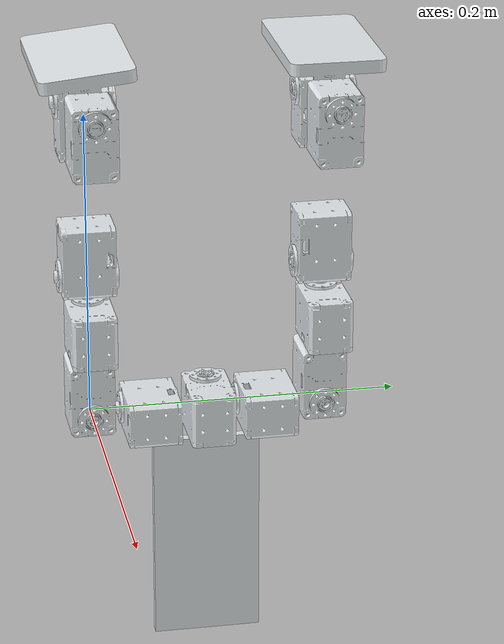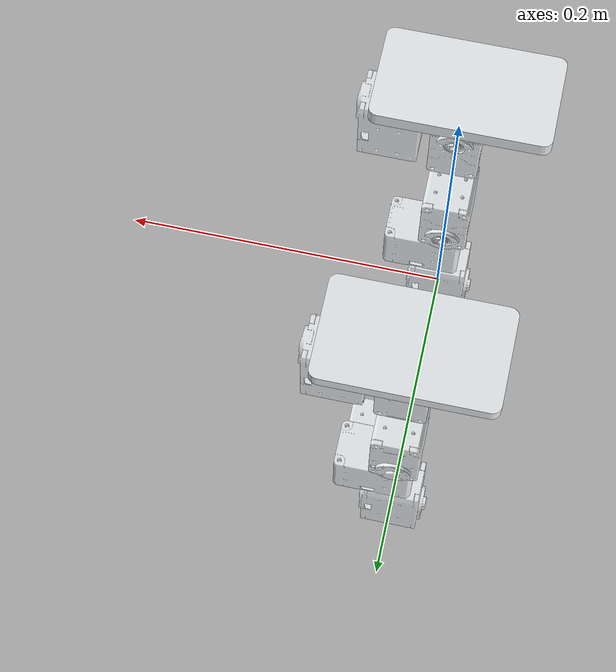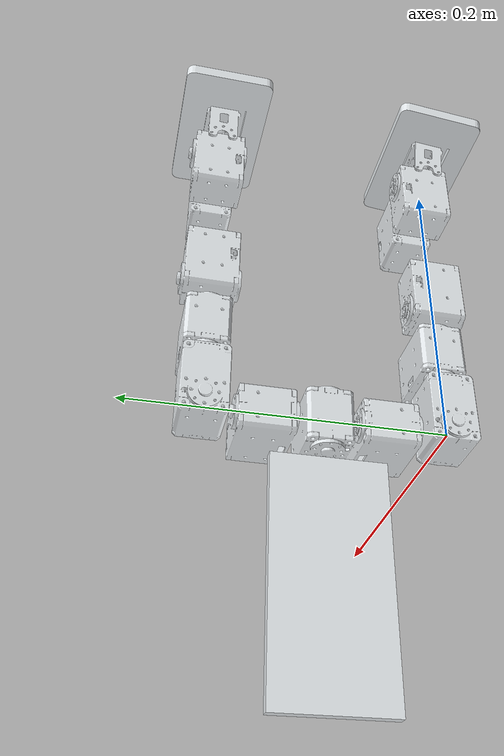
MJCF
<mujoco model="3">
  <default>
    <default class="robot">
      <default class="motor">
        <joint />
        <motor />
        </default>
      <default class="visual">
        <geom material="visualgeom" contype="0" conaffinity="0" group="2" />
        </default>
      <default class="collision">
        <geom material="collision_material" condim="3" contype="0" conaffinity="1" priority="1" group="1" solref="0.005 1" solimp="0.99 0.999 1e-05" friction="1 0.01 0.01" />
        </default>
      </default>
    </default>
  <compiler angle="radian" meshdir="meshes/" />
  <asset>
    <material name="visualgeom" rgba="1 0.949019607843137 0.898039215686275 1" />
    <material name="default_material" rgba="0.7 0.7 0.7 1" />
    <material name="collision_material" rgba="0.89804 0.91765 0.92941 1.0" />
    <mesh name="base_link.STL" file="base_link.STL" />
    <mesh name="r_hip_pitch_link.STL" file="r_hip_pitch_link.STL" />
    <mesh name="r_hip_roll_link.STL" file="r_hip_roll_link.STL" />
    <mesh name="r_hip_thigh_link.STL" file="r_hip_thigh_link.STL" />
    <mesh name="r_hip_calf_link.STL" file="r_hip_calf_link.STL" />
    <mesh name="r_ankle_pitch_link.STL" file="r_ankle_pitch_link.STL" />
    <mesh name="r_ankle_roll_link.STL" file="r_ankle_roll_link.STL" />
    <mesh name="l_hip_pitch_link.STL" file="l_hip_pitch_link.STL" />
    <mesh name="l_hip_roll_link.STL" file="l_hip_roll_link.STL" />
    <mesh name="l_hip_thigh_link.STL" file="l_hip_thigh_link.STL" />
    <mesh name="l_hip_calf_link.STL" file="l_hip_calf_link.STL" />
    <mesh name="l_ankle_pitch_link.STL" file="l_ankle_pitch_link.STL" />
    <mesh name="l_ankle_roll_link.STL" file="l_ankle_roll_link.STL" />
    <mesh name="waist_yaw_link.STL" file="waist_yaw_link.STL" />
    </asset>
  <worldbody>
    <body name="base_link" pos="0.00000000 0.00000000 0.20900000" quat="1 0 0 0" childclass="robot">
      <freejoint name="floating_base" />
      <geom name="base_link_collision" pos="0 0 0" quat="1.0 0.0 0.0 0.0" type="mesh" mesh="base_link.STL" class="collision" />
      <geom name="base_link_visual" pos="0 0 0" quat="1.0 0.0 0.0 0.0" material="visualgeom" type="mesh" mesh="base_link.STL" class="visual" />
      <body name="r_hip_pitch_link" pos="0 0.03775 -0.209" quat="2.609984271978568e-30 -1.6155445744325867e-15 1.0 -1.6155445744325867e-15">
        <joint name="r_hip_pitch_joint" type="hinge" ref="0.0" class="motor" range="-3.142 3.142" axis="0 1 0" />
        <site name="r_hip_pitch_joint_site" pos="0 0 0" quat="1 0 0 0" />
        <inertial pos="0.000512585106856932 -0.0377390460968998 -0.0116725900125635" quat="1.0 0.0 0.0 0.0" mass="0.0438786463015405" diaginertia="9.966209816454e-06 1.10068546473359e-05 6.38513107006193e-06" />
        <geom name="r_hip_pitch_link_collision" pos="0 0 0" quat="1.0 0.0 0.0 0.0" type="mesh" mesh="r_hip_pitch_link.STL" class="collision" />
        <geom name="r_hip_pitch_link_visual" pos="0 0 0" quat="1.0 0.0 0.0 0.0" material="visualgeom" type="mesh" mesh="r_hip_pitch_link.STL" class="visual" />
        <body name="r_hip_roll_link" pos="0 -0.03775 0" quat="1.0 0.0 0.0 0.0">
          <joint name="r_hip_roll_joint" type="hinge" ref="0.0" class="motor" range="-3.142 3.142" axis="-1 0 0" />
          <site name="r_hip_roll_joint_site" pos="0 0 0" quat="1 0 0 0" />
          <inertial pos="-0.0116725900125634 1.09539031014981E-05 -0.0592625851068567" quat="1.0 0.0 0.0 0.0" mass="0.0438786463015405" diaginertia="6.38513107006192e-06 1.10068546473358e-05 9.96620981645398e-06" />
          <geom name="r_hip_roll_link_collision" pos="0 0 0" quat="1.0 0.0 0.0 0.0" type="mesh" mesh="r_hip_roll_link.STL" class="collision" />
          <geom name="r_hip_roll_link_visual" pos="0 0 0" quat="1.0 0.0 0.0 0.0" material="visualgeom" type="mesh" mesh="r_hip_roll_link.STL" class="visual" />
          <body name="r_hip_thigh_link" pos="0 0 -0.0587499999999997" quat="1.0 0.0 0.0 0.0">
            <joint name="r_hip_thigh_joint" type="hinge" ref="0.0" class="motor" range="-3.142 3.142" axis="0 0 1" />
            <site name="r_hip_thigh_joint_site" pos="0 0 0" quat="1 0 0 0" />
            <inertial pos="1.0953903100219E-05 -0.000512585106857445 -0.0464225900125635" quat="1.0 0.0 0.0 0.0" mass="0.0438786463015405" diaginertia="1.10068546473359e-05 9.96620981645401e-06 6.38513107006194e-06" />
            <geom name="r_hip_thigh_link_collision" pos="0 0 0" quat="1.0 0.0 0.0 0.0" type="mesh" mesh="r_hip_thigh_link.STL" class="collision" />
            <geom name="r_hip_thigh_link_visual" pos="0 0 0" quat="1.0 0.0 0.0 0.0" material="visualgeom" type="mesh" mesh="r_hip_thigh_link.STL" class="visual" />
            <body name="r_hip_calf_link" pos="0 0 -0.03475" quat="1.0 0.0 0.0 0.0">
              <joint name="r_hip_calf_joint" type="hinge" ref="0.0" class="motor" range="-3.142 3.142" axis="0 1 0" />
              <site name="r_hip_calf_joint_site" pos="0 0 0" quat="1 0 0 0" />
              <inertial pos="-1.09539031002066E-05 -0.000512585106856929 -0.103827409987437" quat="1.0 0.0 0.0 0.0" mass="0.0438786463015405" diaginertia="1.10068546473359e-05 9.96620981645399e-06 6.38513107006194e-06" />
              <geom name="r_hip_calf_link_collision" pos="0 0 0" quat="1.0 0.0 0.0 0.0" type="mesh" mesh="r_hip_calf_link.STL" class="collision" />
              <geom name="r_hip_calf_link_visual" pos="0 0 0" quat="1.0 0.0 0.0 0.0" material="visualgeom" type="mesh" mesh="r_hip_calf_link.STL" class="visual" />
              <body name="r_ankle_pitch_link" pos="0 0 -0.1155" quat="1.0 0.0 0.0 0.0">
                <joint name="r_ankle _pitch_joint" type="hinge" ref="0.0" class="motor" range="-3.142 3.142" axis="0 1 0" />
                <site name="r_ankle _pitch_joint_site" pos="0 0 0" quat="1 0 0 0" />
                <inertial pos="-0.037237414893143 -1.09539031002194E-05 0.0116725900125634" quat="1.0 0.0 0.0 0.0" mass="0.0438786463015405" diaginertia="9.96620981645399e-06 1.10068546473359e-05 6.38513107006194e-06" />
                <geom name="r_ankle_pitch_link_collision" pos="0 0 0" quat="1.0 0.0 0.0 0.0" type="mesh" mesh="r_ankle_pitch_link.STL" class="collision" />
                <geom name="r_ankle_pitch_link_visual" pos="0 0 0" quat="1.0 0.0 0.0 0.0" material="visualgeom" type="mesh" mesh="r_ankle_pitch_link.STL" class="visual" />
                <body name="r_ankle_roll_link" pos="-0.03775 0 0" quat="1.0 0.0 0.0 0.0">
                  <joint name="r_ankle_roll_joint" type="hinge" ref="0.0" class="motor" range="-3.142 3.142" axis="-1 0 0" />
                  <site name="r_ankle_roll_joint_site" pos="0 0 0" quat="1 0 0 0" />
                  <inertial pos="0.0395 -0.00262871663161335 -0.0261768335109488" quat="1.0 0.0 0.0 0.0" mass="0.168105015619337" diaginertia="5.68510292905988e-05 0.000155703689867648 0.000207033359916456" />
                  <geom name="r_ankle_roll_link_collision" pos="0 0 0" quat="1.0 0.0 0.0 0.0" type="mesh" mesh="r_ankle_roll_link.STL" class="collision" />
                  <geom name="r_ankle_roll_link_visual" pos="0 0 0" quat="1.0 0.0 0.0 0.0" material="visualgeom" type="mesh" mesh="r_ankle_roll_link.STL" class="visual" />
                  </body>
                </body>
              </body>
            </body>
          </body>
        </body>
      <body name="l_hip_pitch_link" pos="0 0.11325 -0.209000000000001" quat="2.609984271978568e-30 -1.6155445744325867e-15 1.0 -1.6155445744325867e-15">
        <joint name="l_hip_pitch_joint" type="hinge" ref="0.0" class="motor" range="-3.142 3.142" axis="0 -1 0" />
        <site name="l_hip_pitch_joint_site" pos="0 0 0" quat="1 0 0 0" />
        <inertial pos="0.000512585106856032 0.0377609539031015 -0.0116725900125656" quat="1.0 0.0 0.0 0.0" mass="0.0438786463015405" diaginertia="9.966209816454e-06 1.10068546473359e-05 6.38513107006194e-06" />
        <geom name="l_hip_pitch_link_collision" pos="0 0 0" quat="1.0 0.0 0.0 0.0" type="mesh" mesh="l_hip_pitch_link.STL" class="collision" />
        <geom name="l_hip_pitch_link_visual" pos="0 0 0" quat="1.0 0.0 0.0 0.0" material="visualgeom" type="mesh" mesh="l_hip_pitch_link.STL" class="visual" />
        <body name="l_hip_roll_link" pos="0 0.0377500000000015 0" quat="1.0 0.0 0.0 0.0">
          <joint name="l_hip_roll_joint" type="hinge" ref="0.0" class="motor" range="-3.142 3.142" axis="-1 0 0" />
          <site name="l_hip_roll_joint_site" pos="0 0 0" quat="1 0 0 0" />
          <inertial pos="-0.0116725900125597 1.09539030993255E-05 -0.0592625851068558" quat="1.0 0.0 0.0 0.0" mass="0.0438786463015405" diaginertia="6.38513107006194e-06 1.10068546473358e-05 9.96620981645398e-06" />
          <geom name="l_hip_roll_link_collision" pos="0 0 0" quat="1.0 0.0 0.0 0.0" type="mesh" mesh="l_hip_roll_link.STL" class="collision" />
          <geom name="l_hip_roll_link_visual" pos="0 0 0" quat="1.0 0.0 0.0 0.0" material="visualgeom" type="mesh" mesh="l_hip_roll_link.STL" class="visual" />
          <body name="l_hip_thigh_link" pos="0 0 -0.0587499999999989" quat="1.0 0.0 0.0 0.0">
            <joint name="l_hip_thigh_joint" type="hinge" ref="0.0" class="motor" range="-3.142 3.142" axis="0 0 1" />
            <site name="l_hip_thigh_joint_site" pos="0 0 0" quat="1 0 0 0" />
            <inertial pos="-1.09539031000581E-05 0.000512585106856783 -0.0464225900125635" quat="1.0 0.0 0.0 0.0" mass="0.0438786463015405" diaginertia="1.10068546473358e-05 9.96620981645398e-06 6.38513107006193e-06" />
            <geom name="l_hip_thigh_link_collision" pos="0 0 0" quat="1.0 0.0 0.0 0.0" type="mesh" mesh="l_hip_thigh_link.STL" class="collision" />
            <geom name="l_hip_thigh_link_visual" pos="0 0 0" quat="1.0 0.0 0.0 0.0" material="visualgeom" type="mesh" mesh="l_hip_thigh_link.STL" class="visual" />
            <body name="l_hip_calf_link" pos="0 0 -0.03475" quat="1.0 0.0 0.0 0.0">
              <joint name="l_hip_calf_joint" type="hinge" ref="0.0" class="motor" range="-3.142 3.142" axis="0 -1 0" />
              <site name="l_hip_calf_joint_site" pos="0 0 0" quat="1 0 0 0" />
              <inertial pos="1.09539031001142E-05 0.000512585106856728 -0.103827409987437" quat="1.0 0.0 0.0 0.0" mass="0.0438786463015405" diaginertia="1.10068546473359e-05 9.96620981645399e-06 6.38513107006194e-06" />
              <geom name="l_hip_calf_link_collision" pos="0 0 0" quat="1.0 0.0 0.0 0.0" type="mesh" mesh="l_hip_calf_link.STL" class="collision" />
              <geom name="l_hip_calf_link_visual" pos="0 0 0" quat="1.0 0.0 0.0 0.0" material="visualgeom" type="mesh" mesh="l_hip_calf_link.STL" class="visual" />
              <body name="l_ankle_pitch_link" pos="0 0 -0.1155" quat="1.0 0.0 0.0 0.0">
                <joint name="l_ankle_pitch_joint" type="hinge" ref="0.0" class="motor" range="-3.142 3.142" axis="0 -1 0" />
                <site name="l_ankle_pitch_joint_site" pos="0 0 0" quat="1 0 0 0" />
                <inertial pos="-0.0372374148931425 -1.09539031001027E-05 0.0116725900125634" quat="1.0 0.0 0.0 0.0" mass="0.0438786463015405" diaginertia="9.96620981645399e-06 1.10068546473359e-05 6.38513107006193e-06" />
                <geom name="l_ankle_pitch_link_collision" pos="0 0 0" quat="1.0 0.0 0.0 0.0" type="mesh" mesh="l_ankle_pitch_link.STL" class="collision" />
                <geom name="l_ankle_pitch_link_visual" pos="0 0 0" quat="1.0 0.0 0.0 0.0" material="visualgeom" type="mesh" mesh="l_ankle_pitch_link.STL" class="visual" />
                <body name="l_ankle_roll_link" pos="-0.0377499999999995 0 0" quat="1.0 0.0 0.0 0.0">
                  <joint name="l_ankle_roll_joint" type="hinge" ref="0.0" class="motor" range="-3.142 3.142" axis="-1 0 0" />
                  <site name="l_ankle_roll_joint_site" pos="0 0 0" quat="1 0 0 0" />
                  <inertial pos="0.0394999999999984 1.11022302462516E-16 -0.0263084922370927" quat="1.0 0.0 0.0 0.0" mass="0.168105015619337" diaginertia="5.68510292905987e-05 0.000155180783823683 0.000207556265960421" />
                  <geom name="l_ankle_roll_link_collision" pos="0 0 0" quat="1.0 0.0 0.0 0.0" type="mesh" mesh="l_ankle_roll_link.STL" class="collision" />
                  <geom name="l_ankle_roll_link_visual" pos="0 0 0" quat="1.0 0.0 0.0 0.0" material="visualgeom" type="mesh" mesh="l_ankle_roll_link.STL" class="visual" />
                  </body>
                </body>
              </body>
            </body>
          </body>
        </body>
      <body name="waist_yaw_link" pos="0 0.0754999999999976 -0.209000000000003" quat="1.0860612277657784e-29 -1.6155445744325867e-15 1.0 -6.722570487708307e-15">
        <joint name="waist_yaw_joint" type="hinge" ref="0.0" class="motor" range="-3.142 3.142" axis="0 0 -1" />
        <site name="waist_yaw_joint_site" pos="0 0 0" quat="1 0 0 0" />
        <inertial pos="-2.25280917660021E-16 -1.38777878078145E-17 0.0949999999999975" quat="1.0 0.0 0.0 0.0" mass="0.232848" diaginertia="0.000475398000000001 0.000381016944000001 9.57781440000002e-05" />
        <geom name="waist_yaw_link_collision" pos="0 0 0" quat="1.0 0.0 0.0 0.0" type="mesh" mesh="waist_yaw_link.STL" class="collision" />
        <geom name="waist_yaw_link_visual" pos="0 0 0" quat="1.0 0.0 0.0 0.0" material="visualgeom" type="mesh" mesh="waist_yaw_link.STL" class="visual" />
        </body>
      <site name="base_link_site" pos="0 0 0" quat="1 0 0 0" />
      <camera name="front_camera" mode="track" fovy="90.0" quat="4.329780281177467e-17 4.329780281177466e-17 0.7071067811865475 0.7071067811865476" pos="0.0 2.0 0.5" />
      <camera name="side_camera" mode="track" fovy="90.0" quat="-0.5 -0.4999999999999999 0.5 0.5000000000000001" pos="-2.0 0.0 0.5" />
      </body>
    </worldbody>
  <actuator>
    <motor name="r_hip_pitch_joint_ctrl" joint="r_hip_pitch_joint" class="motor" />
    <motor name="r_hip_roll_joint_ctrl" joint="r_hip_roll_joint" class="motor" />
    <motor name="r_hip_thigh_joint_ctrl" joint="r_hip_thigh_joint" class="motor" />
    <motor name="r_hip_calf_joint_ctrl" joint="r_hip_calf_joint" class="motor" />
    <motor name="r_ankle _pitch_joint_ctrl" joint="r_ankle _pitch_joint" class="motor" />
    <motor name="r_ankle_roll_joint_ctrl" joint="r_ankle_roll_joint" class="motor" />
    <motor name="l_hip_pitch_joint_ctrl" joint="l_hip_pitch_joint" class="motor" />
    <motor name="l_hip_roll_joint_ctrl" joint="l_hip_roll_joint" class="motor" />
    <motor name="l_hip_thigh_joint_ctrl" joint="l_hip_thigh_joint" class="motor" />
    <motor name="l_hip_calf_joint_ctrl" joint="l_hip_calf_joint" class="motor" />
    <motor name="l_ankle_pitch_joint_ctrl" joint="l_ankle_pitch_joint" class="motor" />
    <motor name="l_ankle_roll_joint_ctrl" joint="l_ankle_roll_joint" class="motor" />
    <motor name="waist_yaw_joint_ctrl" joint="waist_yaw_joint" class="motor" />
    </actuator>
  <contact>
    <exclude body1="base_link" body2="r_hip_pitch_link" />
    <exclude body1="r_hip_pitch_link" body2="r_hip_roll_link" />
    <exclude body1="r_hip_roll_link" body2="r_hip_thigh_link" />
    <exclude body1="r_hip_thigh_link" body2="r_hip_calf_link" />
    <exclude body1="r_hip_calf_link" body2="r_ankle_pitch_link" />
    <exclude body1="r_ankle_pitch_link" body2="r_ankle_roll_link" />
    <exclude body1="base_link" body2="l_hip_pitch_link" />
    <exclude body1="l_hip_pitch_link" body2="l_hip_roll_link" />
    <exclude body1="l_hip_roll_link" body2="l_hip_thigh_link" />
    <exclude body1="l_hip_thigh_link" body2="l_hip_calf_link" />
    <exclude body1="l_hip_calf_link" body2="l_ankle_pitch_link" />
    <exclude body1="l_ankle_pitch_link" body2="l_ankle_roll_link" />
    <exclude body1="base_link" body2="waist_yaw_link" />
    </contact>
  <sensor>
    <framepos name="r_hip_pitch_joint_site_pos" objtype="site" objname="r_hip_pitch_joint_site" />
    <framequat name="r_hip_pitch_joint_site_quat" objtype="site" objname="r_hip_pitch_joint_site" />
    <framelinvel name="r_hip_pitch_joint_site_linvel" objtype="site" objname="r_hip_pitch_joint_site" />
    <frameangvel name="r_hip_pitch_joint_site_angvel" objtype="site" objname="r_hip_pitch_joint_site" />
    <velocimeter name="r_hip_pitch_joint_site_vel" site="r_hip_pitch_joint_site" />
    </sensor>
  </mujoco>
